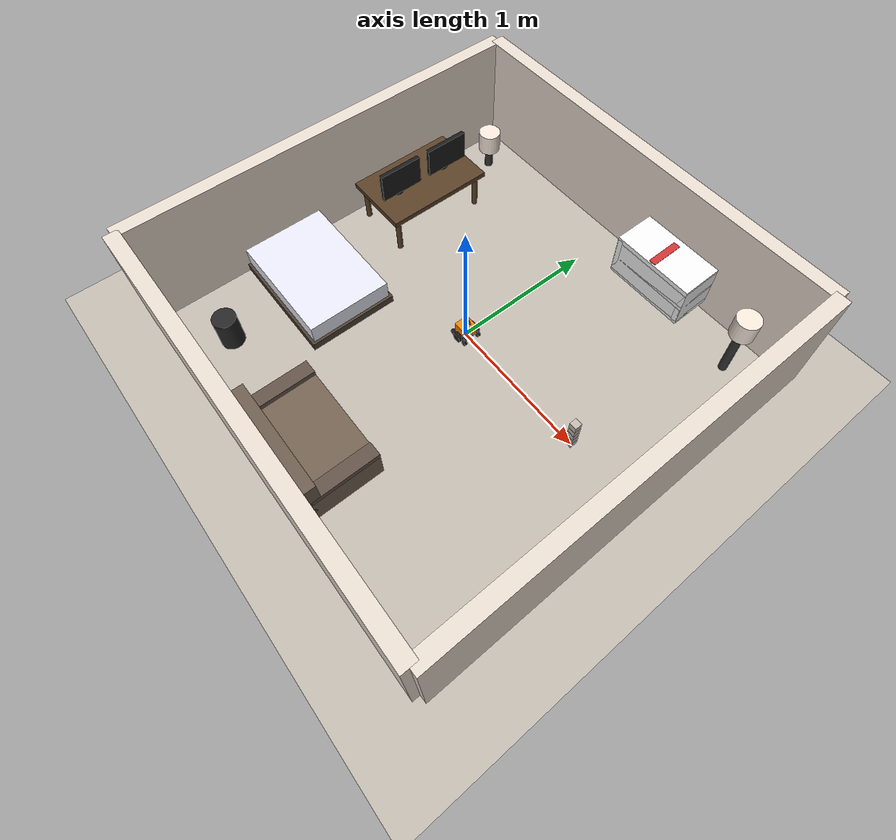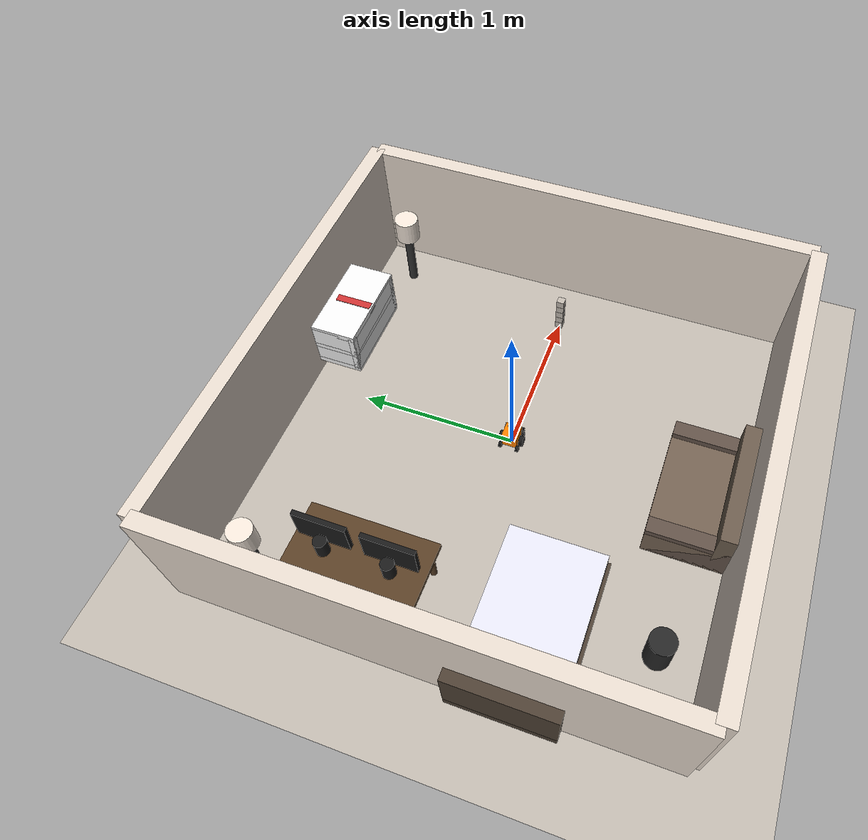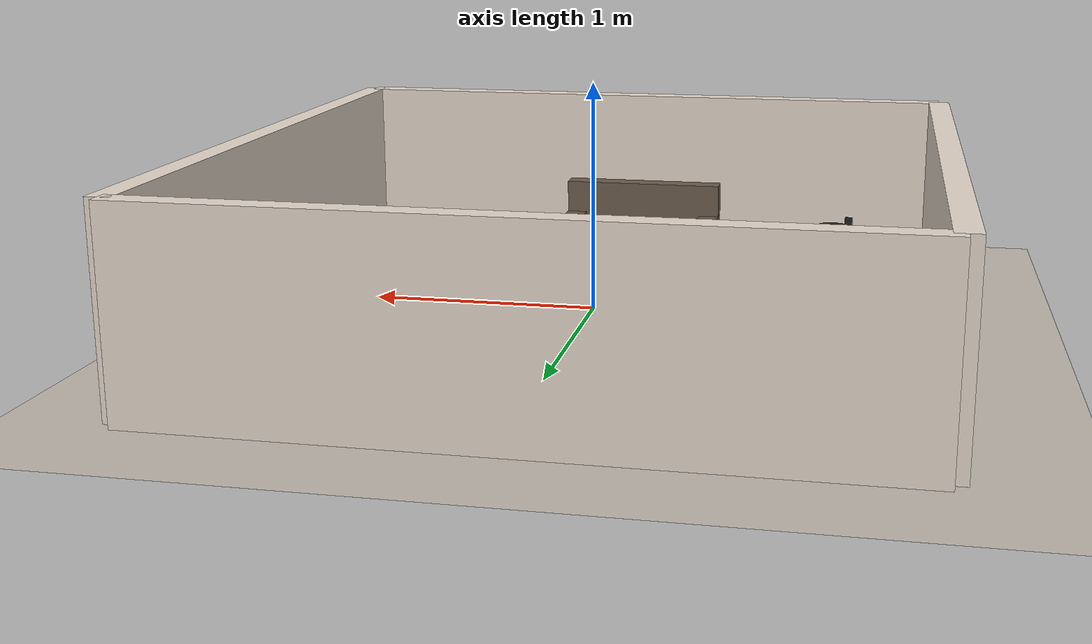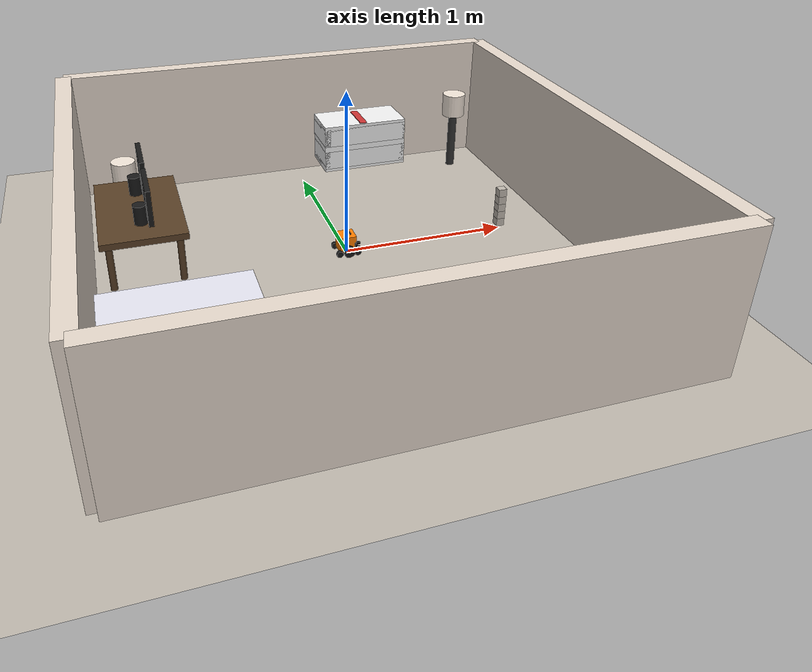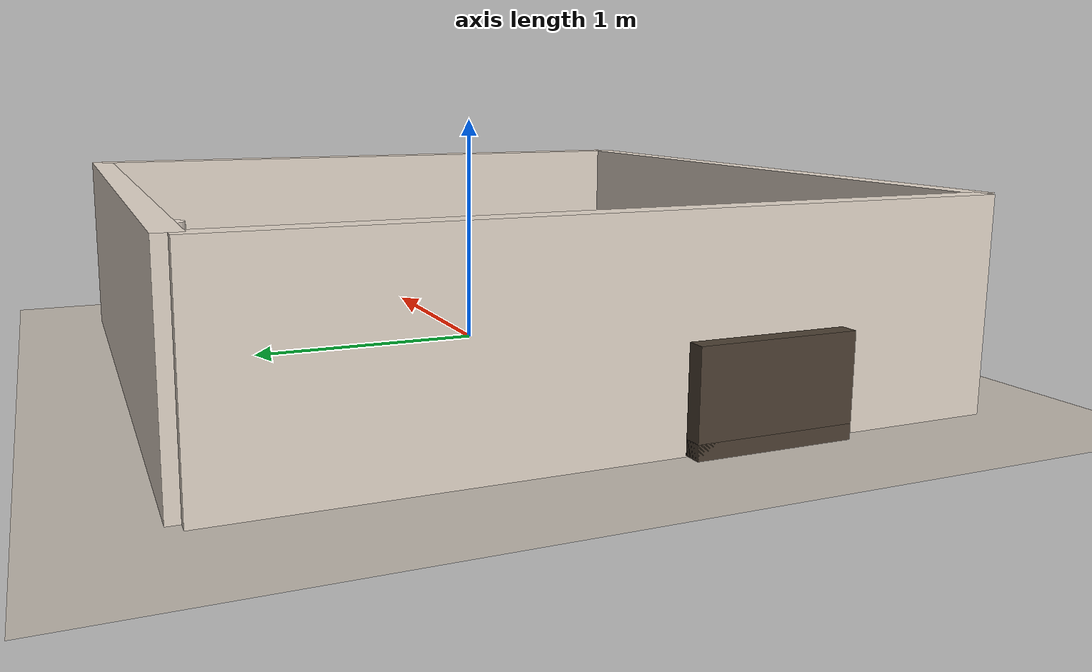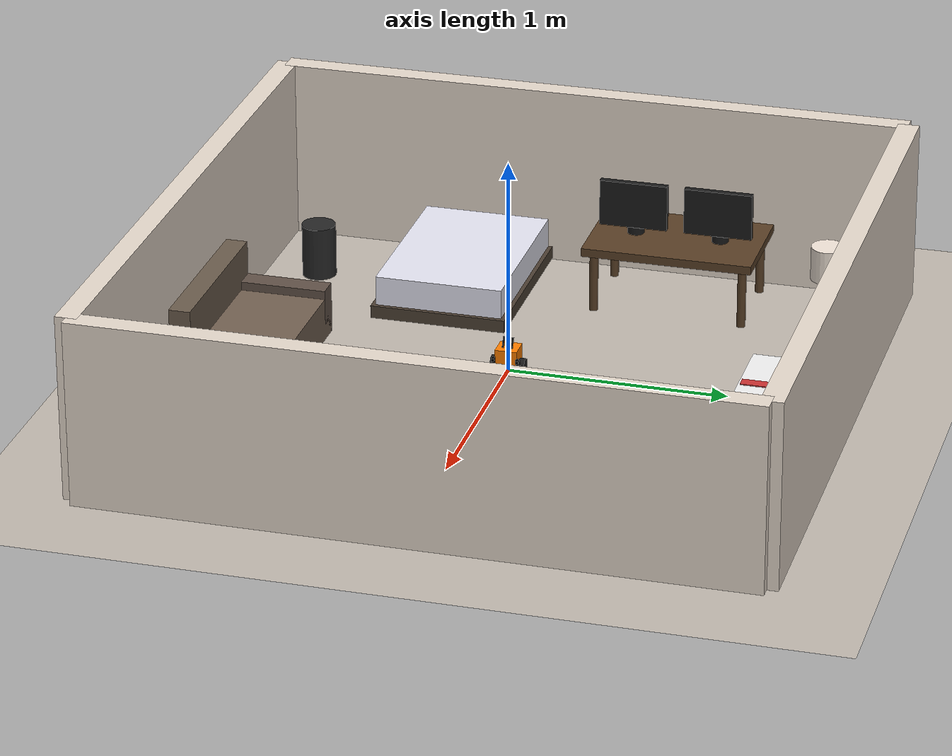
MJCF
<mujoco model="robot scene">
  <compiler angle="radian"/>
  <option timestep="0.0005"/>

  <include file="robots/zima.xml"/>
  <include file="room.xml"/>

  <statistic center="0 0 0.1" extent="0.8"/>

  <asset>
    <texture type="skybox" file="textures/moon.png"/>

    <texture type="2d" name="wheel_texture" builtin="checker" mark="edge" rgb1="0.0 0.0 0.0" rgb2="0.2 0.2 0.2" width="300" height="300"/>
    <material name="wheel_material" texture="wheel_texture" texuniform="true" texrepeat="5 5"/>

    <texture type="cube" name="rubiks_texture1" file="textures/rubiks.png" gridsize = "3 4" gridlayout = "..U.RFLB..D." />
    <texture type="cube" name="rubiks_texture2" file="textures/rubiks.png" gridsize = "3 4" gridlayout = ".U..LDBF.R.." />
    <texture type="cube" name="rubiks_texture3" file="textures/rubiks.png" gridsize = "3 4" gridlayout = "...UFLR.DB.." />
    <texture type="cube" name="rubiks_texture4" file="textures/rubiks.png" gridsize = "3 4" gridlayout = "..D.UBFL..R." />
    <texture type="cube" name="rubiks_texture5" file="textures/rubiks.png" gridsize = "3 4" gridlayout = ".D..RUFB.L.." />
    <material name="rubiks_material1" texture="rubiks_texture1"/>
    <material name="rubiks_material2" texture="rubiks_texture2"/>
    <material name="rubiks_material3" texture="rubiks_texture3"/>
    <material name="rubiks_material4" texture="rubiks_texture4"/>
    <material name="rubiks_material5" texture="rubiks_texture5"/>
  </asset>

  <worldbody>
    <!-- Very light directional light for base illumination -->
    <light directional="true" pos="0 0 3" dir="0 0 -1" diffuse="0.2 0.2 0.2" specular="0.05 0.05 0.05" castshadow="false"/>

    <body name="rubiks_cube1" pos="1.0 0.0 0.05">
      <freejoint/>
      <inertial pos="0 0 0" mass="0.1" diaginertia="0.00016667 0.00016667 0.00016667"/>
      <geom type="box" material="rubiks_material1" size="0.025 0.025 0.025" />
    </body>

    <body name="rubiks_cube2" pos="1.0 0.0 0.10">
      <freejoint/>
      <inertial pos="0 0 0" mass="0.1" diaginertia="0.00016667 0.00016667 0.00016667"/>
      <geom type="box" material="rubiks_material2" size="0.025 0.025 0.025" />
    </body>

    <body name="rubiks_cube3" pos="1.0 0.0 0.15">
      <freejoint/>
      <inertial pos="0 0 0" mass="0.1" diaginertia="0.00016667 0.00016667 0.00016667"/>
      <geom type="box" material="rubiks_material3" size="0.025 0.025 0.025" />
    </body>

    <body name="rubiks_cube4" pos="1.0 0.0 0.20">
      <freejoint/>
      <inertial pos="0 0 0" mass="0.1" diaginertia="0.00016667 0.00016667 0.00016667"/>
      <geom type="box" material="rubiks_material4" size="0.025 0.025 0.025" />
    </body>

    <body name="rubiks_cube5" pos="1.0 0.0 0.25">
      <freejoint/>
      <inertial pos="0 0 0" mass="0.1" diaginertia="0.00016667 0.00016667 0.00016667"/>
      <geom type="box" material="rubiks_material5" size="0.025 0.025 0.025" />
    </body>

  </worldbody>

</mujoco>

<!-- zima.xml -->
<mujoco model="simple_differential_drive">
  <compiler angle="radian"/>

  <default>
    <default class="wheel">
      <geom type="cylinder" size="0.034 0.013" friction="2 0.005 0.0001" contype="1" conaffinity="1" mass="0.032"/>
      <joint type="hinge" frictionloss="0.001" damping="0.01" armature="0.01" limited="false"/>
    </default>
    <default class="idler_wheel">
      <geom type="cylinder" size="0.020 0.010" friction="2 0.005 0.0001" contype="1" conaffinity="1" mass="0.015"/>
      <joint type="hinge" frictionloss="0.001" damping="0.005" armature="0.001" limited="false"/>
    </default>
  </default>

  <worldbody>
    <body name="robot_body" pos="0 0 0.068">
      <joint type="free"/>
      <camera name="front_camera" mode="fixed" pos="0.05 0 -0.03" xyaxes="0 -1 0 0 0 1"/>

      <!-- Main body box -->
      <geom name="body_geom" type="box" size="0.05 0.05 0.05" pos="0 0 0" mass="1.0" rgba="1 0.5 0 1"/>
      <geom name="camera_indicator" type="box" size="0.002 0.015 0.010" pos="0.052 0 -0.03" rgba="0 0 0 1"/>

      <!-- Antennas -->
      <geom name="antenna_left" type="box" size="0.004 0.004 0.025" pos="0.01 -0.02 0.075" quat="0.9659258 0 -0.258819 0" rgba="0 0 0 1"/>
      <geom name="antenna_right" type="box" size="0.004 0.004 0.025" pos="0.01 0.02 0.075" quat="0.9659258 0 -0.258819 0" rgba="0 0 0 1"/>

      <!-- Left Gripper -->
      <geom name="gripper_left_base" type="box" size="0.007 0.007 0.015" pos="0.045 0.055 -0.005" rgba="0 0 0 1"/>
      <geom name="gripper_left_finger1" type="box" size="0.012 0.007 0.007" pos="0.057 0.055 -0.020" rgba="0 0 0 1"/>
      <geom name="gripper_left_finger2" type="box" size="0.012 0.007 0.007" pos="0.057 0.055 0.010" rgba="0 0 0 1"/>

      <!-- Right Gripper -->
      <geom name="gripper_right_base" type="box" size="0.007 0.007 0.015" pos="0.045 -0.055 -0.005" rgba="0 0 0 1"/>
      <geom name="gripper_right_finger1" type="box" size="0.012 0.007 0.007" pos="0.057 -0.055 -0.020" rgba="0 0 0 1"/>
      <geom name="gripper_right_finger2" type="box" size="0.012 0.007 0.007" pos="0.057 -0.055 0.010" rgba="0 0 0 1"/>

      <inertial pos="0 0 0" mass="1.0" diaginertia="0.001 0.001 0.001"/>

      <!-- Left wheel -->
      <body name="wheel_l" pos="0 0.065 -0.035">
        <joint class="wheel" name="wheel_l_throttle" axis="0 1 0"/>
        <geom class="wheel" quat="0.707107 0.707107 0 0" material="wheel_material"/>
      </body>

      <!-- Right wheel -->
      <body name="wheel_r" pos="0 -0.065 -0.035">
        <joint class="wheel" name="wheel_r_throttle" axis="0 1 0"/>
        <geom class="wheel" quat="0.707107 0.707107 0 0" material="wheel_material"/>
      </body>

      <!-- Front left idler wheel -->
      <body name="wheel_fl_idler" pos="0.055 0.055 -0.048">
        <joint class="idler_wheel" name="wheel_fl_idler_joint" axis="0 1 0"/>
        <geom class="idler_wheel" quat="0.707107 0.707107 0 0" material="wheel_material"/>
      </body>

      <!-- Front right idler wheel -->
      <body name="wheel_fr_idler" pos="0.055 -0.055 -0.048">
        <joint class="idler_wheel" name="wheel_fr_idler_joint" axis="0 1 0"/>
        <geom class="idler_wheel" quat="0.707107 0.707107 0 0" material="wheel_material"/>
      </body>

      <!-- Rear left idler wheel -->
      <body name="wheel_bl_idler" pos="-0.055 0.055 -0.048">
        <joint class="idler_wheel" name="wheel_bl_idler_joint" axis="0 1 0"/>
        <geom class="idler_wheel" quat="0.707107 0.707107 0 0" material="wheel_material"/>
      </body>

      <!-- Rear right idler wheel -->
      <body name="wheel_br_idler" pos="-0.055 -0.055 -0.048">
        <joint class="idler_wheel" name="wheel_br_idler_joint" axis="0 1 0"/>
        <geom class="idler_wheel" quat="0.707107 0.707107 0 0" material="wheel_material"/>
      </body>
    </body>
  </worldbody>

  <actuator>
    <velocity kv="100" gear="0.04" forcelimited="true" forcerange="-50 50" name="motor_l_wheel" joint="wheel_l_throttle"/>
    <velocity kv="100" gear="0.04" forcelimited="true" forcerange="-50 50" name="motor_r_wheel" joint="wheel_r_throttle"/>
  </actuator>
</mujoco>

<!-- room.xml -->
<mujoco>
  <asset>
    <texture type="2d" name="groundplane" file="textures/floorboard.png"/>
    <material name="groundplane" texture="groundplane" texuniform="true" texrepeat="5 5"/>

    <texture type="2d" name="ceiling_texture" file="textures/popcorn_ceiling.png"/>
    <material name="ceiling_material" texture="ceiling_texture" texuniform="true" texrepeat="2 2"/>

    <material name="wall_material" rgba="0.9 0.85 0.8 1"/>
    <material name="couch_seat" rgba="0.45 0.38 0.32 1"/>
    <material name="couch_back" rgba="0.42 0.36 0.30 1"/>
    <material name="couch_arms" rgba="0.38 0.32 0.28 1"/>
    <material name="lamp_base" rgba="0.2 0.2 0.2 1"/>
    <material name="lamp_shade" rgba="0.95 0.9 0.85 1"/>
    <material name="desk_material" rgba="0.35 0.25 0.15 1"/>
    <material name="monitor_frame" rgba="0.1 0.1 0.1 1"/>
    <material name="monitor_screen" rgba="0.15 0.2 0.25 1"/>
    <material name="garbage_can" rgba="0.15 0.15 0.15 1"/>
    <material name="bookshelf_material" rgba="0.95 0.95 0.95 1"/>
    <material name="book_red" rgba="0.8 0.2 0.2 1"/>
    <material name="book_blue" rgba="0.2 0.3 0.8 1"/>
    <material name="book_green" rgba="0.2 0.7 0.3 1"/>
    <material name="book_yellow" rgba="0.9 0.8 0.2 1"/>
    <material name="book_purple" rgba="0.6 0.2 0.7 1"/>
  </asset>

  <worldbody>
    <!-- Grid of ceiling lights (3x3) - warm white -->
    <light name="light_0" pos="-0.8 -0.8 0.65" dir="0 0 -1" diffuse="0.6 0.55 0.5" specular="0.1 0.1 0.08" castshadow="true" active="true" cutoff="45" exponent="5"/>
    <light name="light_1" pos="0 -0.8 0.65" dir="0 0 -1" diffuse="0.6 0.55 0.5" specular="0.1 0.1 0.08" castshadow="true" active="true" cutoff="40" exponent="5"/>
    <light name="light_2" pos="0.8 -0.8 0.65" dir="0 0 -1" diffuse="0.6 0.55 0.5" specular="0.1 0.1 0.08" castshadow="true" active="true" cutoff="50" exponent="5"/>
    <light name="light_3" pos="-0.8 0 0.65" dir="0 0 -1" diffuse="0.6 0.55 0.5" specular="0.1 0.1 0.08" castshadow="true" active="true" cutoff="35" exponent="5"/>
    <light name="light_4" pos="0 0 0.65" dir="0 0 -1" diffuse="0.6 0.55 0.5" specular="0.1 0.1 0.08" castshadow="true" active="true" cutoff="55" exponent="5"/>
    <light name="light_5" pos="0.8 0 0.65" dir="0 0 -1" diffuse="0.6 0.55 0.5" specular="0.1 0.1 0.08" castshadow="true" active="true" cutoff="42" exponent="5"/>
    <light name="light_6" pos="-0.8 0.8 0.65" dir="0 0 -1" diffuse="0.6 0.55 0.5" specular="0.1 0.1 0.08" castshadow="true" active="true" cutoff="48" exponent="5"/>
    <light name="light_7" pos="0 0.8 0.65" dir="0 0 -1" diffuse="0.6 0.55 0.5" specular="0.1 0.1 0.08" castshadow="true" active="true" cutoff="38" exponent="5"/>
    <light name="light_8" pos="0.8 0.8 0.65" dir="0 0 -1" diffuse="0.6 0.55 0.5" specular="0.1 0.1 0.08" castshadow="true" active="true" cutoff="52" exponent="5"/>

    <!-- Additional colored accent lights with varied angles and cutoffs -->
    <light name="light_9" pos="-1.0 -1.0 0.5" dir="0.2 0.2 -1" diffuse="0.8 0.3 0.3" specular="0.1 0.05 0.05" castshadow="true" active="true" cutoff="25" exponent="5"/>
    <light name="light_10" pos="1.0 -1.0 0.5" dir="-0.2 0.2 -1" diffuse="0.3 0.3 0.9" specular="0.05 0.05 0.15" castshadow="true" active="true" cutoff="30" exponent="5"/>
    <light name="light_11" pos="-1.0 1.0 0.5" dir="0.2 -0.2 -1" diffuse="0.3 0.8 0.3" specular="0.05 0.1 0.05" castshadow="true" active="true" cutoff="28" exponent="5"/>
    <light name="light_12" pos="1.0 1.0 0.5" dir="-0.2 -0.2 -1" diffuse="0.7 0.7 0.3" specular="0.1 0.1 0.05" castshadow="true" active="true" cutoff="35" exponent="5"/>
    <light name="light_13" pos="0 -1.2 0.45" dir="0 0.3 -1" diffuse="0.5 0.2 0.7" specular="0.08 0.03 0.1" castshadow="true" active="true" cutoff="22" exponent="5"/>
    <light name="light_14" pos="0 1.2 0.45" dir="0 -0.3 -1" diffuse="0.2 0.6 0.8" specular="0.03 0.08 0.12" castshadow="true" active="true" cutoff="26" exponent="5"/>
    <light name="light_15" pos="-1.2 0 0.45" dir="0.3 0 -1" diffuse="0.9 0.4 0.2" specular="0.12 0.06 0.03" castshadow="true" active="true" cutoff="32" exponent="5"/>
    <light name="light_16" pos="1.2 0 0.45" dir="-0.3 0 -1" diffuse="0.2 0.8 0.5" specular="0.03 0.12 0.08" castshadow="true" active="true" cutoff="29" exponent="5"/>
    <light name="light_17" pos="-0.5 -0.5 0.6" dir="0.1 0.1 -1" diffuse="0.6 0.3 0.9" specular="0.08 0.04 0.12" castshadow="true" active="true" cutoff="38" exponent="5"/>
    <light name="light_18" pos="0.5 -0.5 0.6" dir="-0.1 0.1 -1" diffuse="0.9 0.6 0.2" specular="0.12 0.08 0.03" castshadow="true" active="true" cutoff="42" exponent="5"/>
    <light name="light_19" pos="-0.5 0.5 0.6" dir="0.1 -0.1 -1" diffuse="0.3 0.9 0.8" specular="0.04 0.12 0.1" castshadow="true" active="true" cutoff="36" exponent="5"/>
    <light name="light_20" pos="0.5 0.5 0.6" dir="-0.1 -0.1 -1" diffuse="0.8 0.2 0.4" specular="0.1 0.03 0.06" castshadow="true" active="true" cutoff="44" exponent="5"/>
    <light name="light_21" pos="0 0 0.55" dir="0.15 0.15 -1" diffuse="0.4 0.5 0.9" specular="0.06 0.08 0.12" castshadow="true" active="true" cutoff="48" exponent="5"/>
    <light name="light_22" pos="-0.6 0.3 0.58" dir="0.2 -0.1 -1" diffuse="0.9 0.3 0.6" specular="0.12 0.04 0.08" castshadow="true" active="true" cutoff="34" exponent="5"/>
    <light name="light_23" pos="0.6 -0.3 0.58" dir="-0.2 0.1 -1" diffuse="0.3 0.7 0.3" specular="0.04 0.1 0.04" castshadow="true" active="true" cutoff="40" exponent="5"/>
    <light name="light_24" pos="-0.3 0.6 0.52" dir="0.1 -0.2 -1" diffuse="0.7 0.8 0.4" specular="0.1 0.12 0.06" castshadow="true" active="true" cutoff="46" exponent="5"/>
    <light name="light_25" pos="0.3 -0.6 0.52" dir="-0.1 0.2 -1" diffuse="0.5 0.3 0.8" specular="0.08 0.04 0.1" castshadow="true" active="true" cutoff="31" exponent="5"/>
    <light name="light_26" pos="-0.9 -0.4 0.54" dir="0.25 0.15 -1" diffuse="0.2 0.9 0.6" specular="0.03 0.12 0.08" castshadow="true" active="true" cutoff="37" exponent="5"/>
    <light name="light_27" pos="0.9 0.4 0.54" dir="-0.25 -0.15 -1" diffuse="0.8 0.5 0.3" specular="0.1 0.08 0.04" castshadow="true" active="true" cutoff="43" exponent="5"/>
    <light name="light_28" pos="0.4 0.9 0.56" dir="-0.15 -0.25 -1" diffuse="0.4 0.3 0.95" specular="0.06 0.04 0.14" castshadow="true" active="true" cutoff="27" exponent="5"/>

    <!-- Corner lamp lights -->
    <light name="lamp_light_1" pos="1.2 1.2 0.4" dir="0 0 -1" diffuse="0.5 0.45 0.4" specular="0.2 0.2 0.15" castshadow="false" attenuation="0.5 0.5 0.5"/>
    <light name="lamp_light_2" pos="-1.2 1.2 0.4" dir="0 0 -1" diffuse="0.45 0.4 0.35" specular="0.15 0.15 0.1" castshadow="false" attenuation="0.5 0.5 0.5"/>

    <geom name="floor" size="0 0 0.05" pos="0 0 -0.1" type="plane" material="groundplane"/>

    <!-- Room walls - light gray -->
    <geom name="wall_north" type="box" size="1.5 0.05 0.5" pos="0 1.5 0.25" material="wall_material"/>
    <geom name="wall_south" type="box" size="1.5 0.05 0.5" pos="0 -1.5 0.25" material="wall_material"/>
    <geom name="wall_east" type="box" size="0.05 1.5 0.5" pos="1.5 0 0.25" material="wall_material"/>
    <geom name="wall_west" type="box" size="0.05 1.5 0.5" pos="-1.5 0 0.25" material="wall_material"/>

    <!-- Ceiling with popcorn texture -->
    <geom name="ceiling" type="plane" size="1.5 1.5 0.05" pos="0 0 0.7" zaxis="0 0 -1" material="ceiling_material"/>

    <!-- Simple geometric couch against south wall -->
    <body name="couch" pos="0 -1.2 0.0">
      <!-- Seat base -->
      <geom type="box" size="0.4 0.25 0.1" pos="0 0 0.0" material="couch_seat"/>
      <!-- Invisible slanted collision box on top -->
      <geom type="box" size="0.4 0.25 0.02" pos="0 0 0.12" rgba="0 0 0 0" euler="0.3 0.3 0"/>
      <!-- Back rest -->
      <geom type="box" size="0.4 0.05 0.15" pos="0 -0.2 0.15" material="couch_back"/>
      <!-- Invisible slanted collision box on backrest -->
      <geom type="box" size="0.4 0.05 0.02" pos="0 -0.2 0.32" rgba="0 0 0 0" euler="0.3 0 0"/>
      <!-- Left armrest -->
      <geom type="box" size="0.05 0.25 0.12" pos="-0.35 0 0.02" material="couch_arms"/>
      <!-- Invisible slanted collision box on left armrest -->
      <geom type="box" size="0.05 0.25 0.02" pos="-0.35 0 0.16" rgba="0 0 0 0" euler="0 0.3 0"/>
      <!-- Right armrest -->
      <geom type="box" size="0.05 0.25 0.12" pos="0.35 0 0.02" material="couch_arms"/>
      <!-- Invisible slanted collision box on right armrest -->
      <geom type="box" size="0.05 0.25 0.02" pos="0.35 0 0.16" rgba="0 0 0 0" euler="0 0.3 0"/>
    </body>

    <!-- Corner lamps -->
    <body name="lamp1" pos="1.2 1.2 0.0">
      <!-- Base (taller) -->
      <geom type="cylinder" size="0.03 0.25" pos="0 0 0.125" material="lamp_base"/>
      <!-- Shade -->
      <geom type="cylinder" size="0.08 0.08" pos="0 0 0.375" material="lamp_shade"/>
      <!-- Invisible slanted collision box on shade -->
      <geom type="box" size="0.08 0.08 0.02" pos="0 0 0.46" rgba="0 0 0 0" euler="0.3 0.3 0"/>
    </body>

    <body name="lamp2" pos="-1.2 1.2 0.0">
      <!-- Base -->
      <geom type="cylinder" size="0.03 0.15" pos="0 0 0.05" material="lamp_base"/>
      <!-- Shade -->
      <geom type="cylinder" size="0.08 0.08" pos="0 0 0.15" material="lamp_shade"/>
      <!-- Invisible slanted collision box on shade -->
      <geom type="box" size="0.08 0.08 0.02" pos="0 0 0.24" rgba="0 0 0 0" euler="0.3 0.3 0"/>
    </body>

    <!-- Simple bed against west wall -->
    <body name="bed" pos="-1.1 -0.5 0.0">
      <!-- Bed frame -->
      <geom type="box" size="0.52 0.32 0.03" pos="0 0 -0.07" rgba="0.3 0.25 0.2 1"/>
      <!-- Mattress -->
      <geom type="box" size="0.5 0.3 0.1" pos="0 0 0.0" rgba="0.9 0.9 0.95 1"/>
      <!-- Invisible slanted collision box on mattress -->
      <geom type="box" size="0.5 0.3 0.02" pos="0 0 0.12" rgba="0 0 0 0" euler="0.3 0.3 0"/>
      <!-- Headboard -->
      <geom type="box" size="0.05 0.32 0.2" pos="-0.47 0 0.1" rgba="0.3 0.25 0.2 1"/>
      <!-- Invisible slanted collision box on headboard -->
      <geom type="box" size="0.05 0.32 0.02" pos="-0.47 0 0.32" rgba="0 0 0 0" euler="0 0.3 0"/>
    </body>

    <!-- White bookshelf against north wall -->
    <body name="bookshelf" pos="0.5 1.3 0.0">
      <!-- Shelf frame - bottom -->
      <geom type="box" size="0.3 0.15 0.02" pos="0 0 0.0" material="bookshelf_material"/>
      <!-- Shelf frame - middle -->
      <geom type="box" size="0.3 0.15 0.02" pos="0 0 0.15" material="bookshelf_material"/>
      <!-- Shelf frame - top -->
      <geom type="box" size="0.3 0.15 0.02" pos="0 0 0.3" material="bookshelf_material"/>
      <!-- Left side -->
      <geom type="box" size="0.02 0.15 0.15" pos="-0.28 0 0.15" material="bookshelf_material"/>
      <!-- Right side -->
      <geom type="box" size="0.02 0.15 0.15" pos="0.28 0 0.15" material="bookshelf_material"/>
      <!-- Back panel -->
      <geom type="box" size="0.3 0.02 0.15" pos="0 -0.13 0.15" material="bookshelf_material"/>

      <!-- Books on bottom shelf -->
      <geom type="box" size="0.03 0.12 0.06" pos="-0.2 -0.02 0.07" material="book_red"/>
      <geom type="box" size="0.04 0.12 0.08" pos="-0.12 -0.02 0.09" material="book_blue"/>
      <geom type="box" size="0.025 0.12 0.07" pos="-0.06 -0.02 0.075" material="book_green"/>
      <geom type="box" size="0.035 0.12 0.06" pos="0.0 -0.02 0.07" material="book_yellow"/>
      <geom type="box" size="0.03 0.12 0.09" pos="0.05 -0.02 0.095" material="book_purple"/>
      <geom type="box" size="0.04 0.12 0.07" pos="0.1 -0.02 0.075" material="book_red"/>
      <geom type="box" size="0.03 0.12 0.08" pos="0.16 -0.02 0.09" material="book_green"/>

      <!-- Books on middle shelf -->
      <geom type="box" size="0.035 0.12 0.07" pos="-0.18 -0.02 0.22" material="book_blue"/>
      <geom type="box" size="0.03 0.12 0.06" pos="-0.13 -0.02 0.21" material="book_yellow"/>
      <geom type="box" size="0.04 0.12 0.08" pos="-0.07 -0.02 0.23" material="book_purple"/>
      <geom type="box" size="0.025 0.12 0.09" pos="-0.01 -0.02 0.235" material="book_red"/>
      <geom type="box" size="0.035 0.12 0.07" pos="0.04 -0.02 0.22" material="book_green"/>
      <geom type="box" size="0.03 0.12 0.08" pos="0.09 -0.02 0.23" material="book_blue"/>
      <geom type="box" size="0.04 0.12 0.06" pos="0.14 -0.02 0.21" material="book_yellow"/>

      <!-- Invisible slanted collision box on top -->
      <geom type="box" size="0.3 0.15 0.02" pos="0 0 0.34" rgba="0 0 0 0" euler="0.3 0.3 0"/>
    </body>

    <!-- Desk against west wall -->
    <body name="desk" pos="-1.15 0.5 0.0">
      <!-- Legs -->
      <geom type="cylinder" size="0.02 0.18" pos="-0.2 -0.35 0.0" material="desk_material"/>
      <geom type="cylinder" size="0.02 0.18" pos="0.2 -0.35 0.0" material="desk_material"/>
      <geom type="cylinder" size="0.02 0.18" pos="-0.2 0.35 0.0" material="desk_material"/>
      <geom type="cylinder" size="0.02 0.18" pos="0.2 0.35 0.0" material="desk_material"/>
      <!-- Desktop -->
      <geom type="box" size="0.25 0.4 0.02" pos="0 0 0.2" material="desk_material"/>
    </body>

    <!-- Monitors on desk -->
    <body name="monitor1" pos="-1.15 0.7 0.22">
      <!-- Stand -->
      <geom type="cylinder" size="0.04 0.06" pos="0 0 0.06" material="monitor_frame"/>
      <!-- Screen (rotated to face outward from wall) -->
      <geom type="box" size="0.01 0.15 0.1" pos="0.05 0 0.16" material="monitor_screen"/>
      <!-- Frame -->
      <geom type="box" size="0.015 0.16 0.11" pos="0.05 0 0.16" material="monitor_frame"/>
      <!-- Invisible slanted collision box on top -->
      <geom type="box" size="0.015 0.16 0.02" pos="0.05 0 0.28" rgba="0 0 0 0" euler="0.3 0 0"/>
    </body>

    <body name="monitor2" pos="-1.15 0.3 0.22">
      <!-- Stand -->
      <geom type="cylinder" size="0.04 0.06" pos="0 0 0.06" material="monitor_frame"/>
      <!-- Screen (rotated to face outward from wall) -->
      <geom type="box" size="0.01 0.15 0.1" pos="0.05 0 0.16" material="monitor_screen"/>
      <!-- Frame -->
      <geom type="box" size="0.015 0.16 0.11" pos="0.05 0 0.16" material="monitor_frame"/>
      <!-- Invisible slanted collision box on top -->
      <geom type="box" size="0.015 0.16 0.02" pos="0.05 0 0.28" rgba="0 0 0 0" euler="0.3 0 0"/>
    </body>

    <!-- Small black garbage can -->
    <body name="garbage_can" pos="-1.0 -1.2 0.0">
      <geom type="cylinder" size="0.08 0.15" pos="0 0 0.0" material="garbage_can"/>
      <!-- Invisible slanted collision box on top -->
      <geom type="box" size="0.08 0.08 0.02" pos="0 0 0.17" rgba="0 0 0 0" euler="0.3 0.3 0"/>
    </body>
  </worldbody>
</mujoco>
